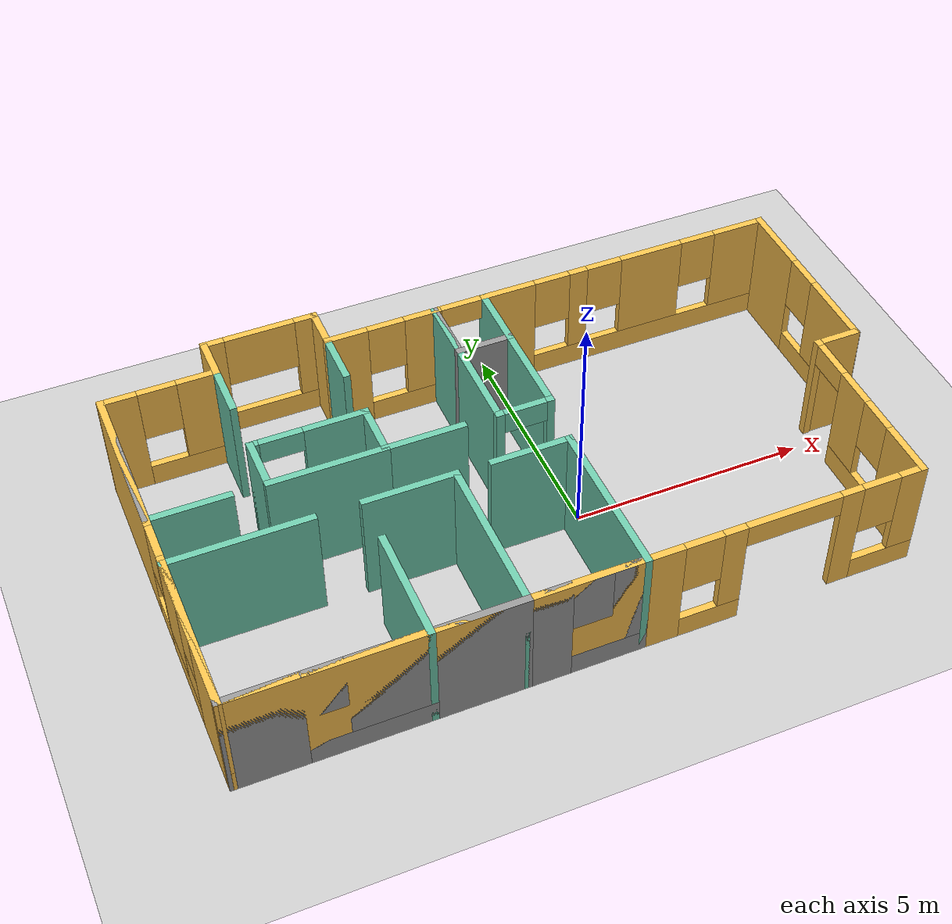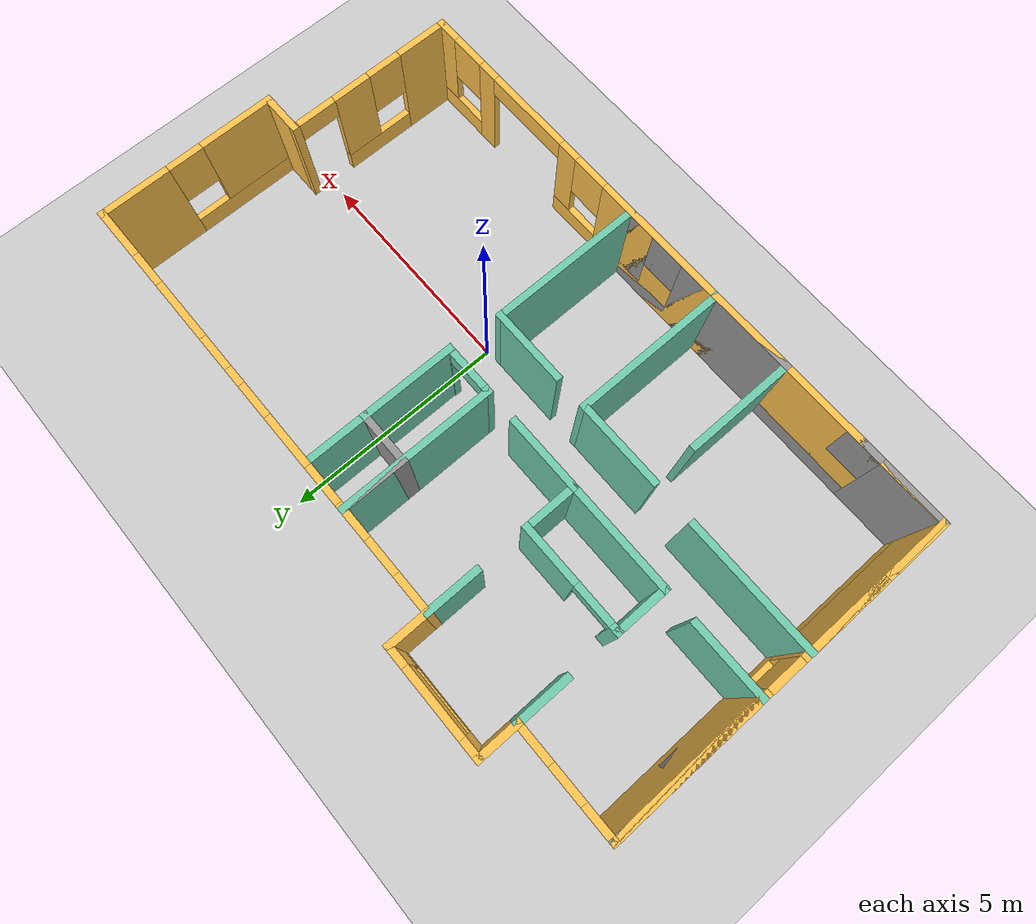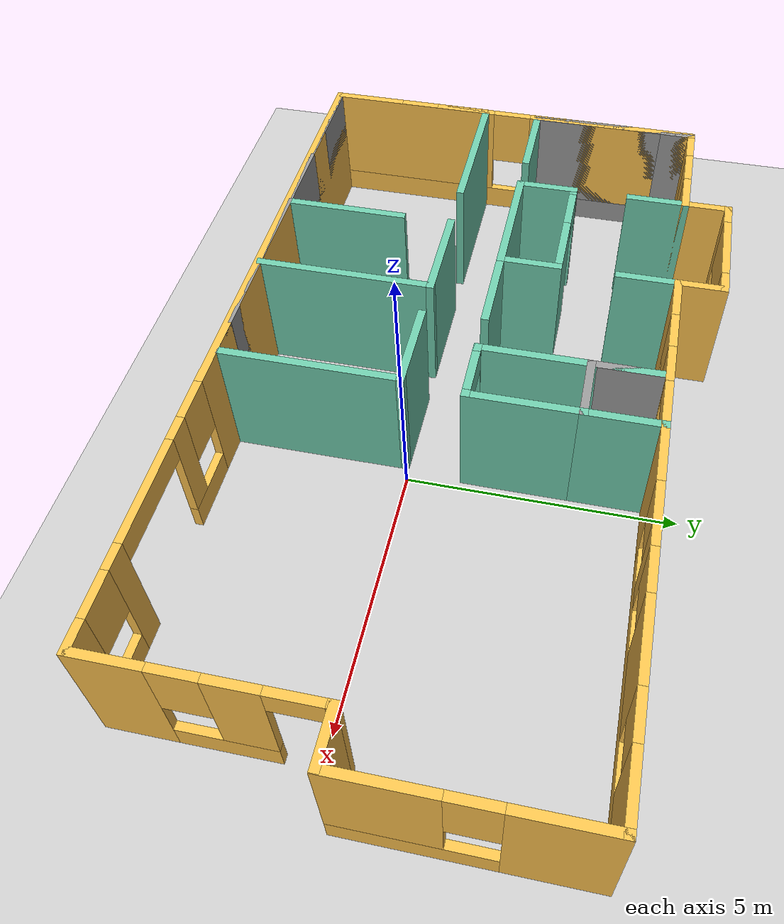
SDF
<sdf version="1.7">
 <world name="default">
  <model name="ground_plane">
   <static>1</static>
   <link name="link">
    <collision name="collision">
     <geometry><plane><normal>0 0 1</normal><size>100 100</size></plane></geometry>
     <surface><friction><ode><mu>100</mu><mu2>50</mu2></ode></friction></surface>
    </collision>
    <visual name="visual">
     <cast_shadows>0</cast_shadows>
     <geometry><plane><normal>0 0 1</normal><size>100 100</size></plane></geometry>
     <material>
      <script><uri>file://media/materials/scripts/gazebo.material</uri><name>Gazebo/Grey</name></script>
     </material>
    </visual>
   </link>
  </model>
  <model name="house">
   <pose>-1.00559 0.90173 0 0 -0 0</pose>
   <link name="Wall_0">
    <pose>-6.16995 3.50005 0 0 -0 0</pose>
    <visual name="Wall_0_Visual_0">
     <pose>-0.852569 0 1.25 0 -0 0</pose>
     <geometry><box><size>0.794862 0.15 2.5</size></box></geometry>
     <material>
      <script><uri>file://media/materials/scripts/gazebo.material</uri><name>Gazebo/Grey</name></script>
      <ambient>1 0.764706 0.305882 1</ambient>
     </material>
     <meta><layer>0</layer></meta>
    </visual>
    <collision name="Wall_0_Collision_0">
     <geometry><box><size>0.794862 0.15 2.5</size></box></geometry>
     <pose>-0.852569 0 1.25 0 -0 0</pose>
    </collision>
    <visual name="Wall_0_Visual_1">
     <pose>0.397431 0 0.25 0 -0 0</pose>
     <geometry><box><size>1.70514 0.15 0.5</size></box></geometry>
     <material>
      <script><uri>file://media/materials/scripts/gazebo.material</uri><name>Gazebo/Grey</name></script>
      <ambient>1 0.764706 0.305882 1</ambient>
     </material>
     <meta><layer>0</layer></meta>
    </visual>
    <collision name="Wall_0_Collision_1">
     <geometry><box><size>1.70514 0.15 0.5</size></box></geometry>
     <pose>0.397431 0 0.25 0 -0 0</pose>
    </collision>
    <visual name="Wall_0_Visual_2">
     <pose>0.797431 0 1.5 0 -0 0</pose>
     <geometry><box><size>0.905138 0.15 2</size></box></geometry>
     <material>
      <script><uri>file://media/materials/scripts/gazebo.material</uri><name>Gazebo/Grey</name></script>
      <ambient>1 0.764706 0.305882 1</ambient>
     </material>
     <meta><layer>0</layer></meta>
    </visual>
    <collision name="Wall_0_Collision_2">
     <geometry><box><size>0.905138 0.15 2</size></box></geometry>
     <pose>0.797431 0 1.5 0 -0 0</pose>
    </collision>
    <visual name="Wall_0_Visual_3">
     <pose>-0.055138 0 1.9 0 -0 0</pose>
     <geometry><box><size>0.8 0.15 1.2</size></box></geometry>
     <material>
      <script><uri>file://media/materials/scripts/gazebo.material</uri><name>Gazebo/Grey</name></script>
      <ambient>1 0.764706 0.305882 1</ambient>
     </material>
     <meta><layer>0</layer></meta>
    </visual>
    <collision name="Wall_0_Collision_3">
     <geometry><box><size>0.8 0.15 1.2</size></box></geometry>
     <pose>-0.055138 0 1.9 0 -0 0</pose>
    </collision>
   </link>
   <link name="Wall_1">
    <collision name="Wall_1_Collision">
     <geometry><box><size>1 0.15 2.5</size></box></geometry>
     <pose>0 0 1.25 0 -0 0</pose>
    </collision>
    <visual name="Wall_1_Visual">
     <pose>0 0 1.25 0 -0 0</pose>
     <geometry><box><size>1 0.15 2.5</size></box></geometry>
     <material>
      <script><uri>file://media/materials/scripts/gazebo.material</uri><name>Gazebo/Grey</name></script>
      <ambient>1 0.764706 0.305882 1</ambient>
     </material>
     <meta><layer>0</layer></meta>
    </visual>
    <pose>-4.99495 3.92505 0 0 -0 1.5708</pose>
   </link>
   <link name="Wall_10">
    <pose>6.49505 -2.42495 0 0 -0 1.5708</pose>
    <visual name="Wall_10_Visual_0">
     <pose>-1.37895 0 1.25 0 -0 0</pose>
     <geometry><box><size>1.24209 0.15 2.5</size></box></geometry>
     <material>
      <script><uri>file://media/materials/scripts/gazebo.material</uri><name>Gazebo/Grey</name></script>
      <ambient>1 0.764706 0.305882 1</ambient>
     </material>
     <meta><layer>0</layer></meta>
    </visual>
    <collision name="Wall_10_Collision_0">
     <geometry><box><size>1.24209 0.15 2.5</size></box></geometry>
     <pose>-1.37895 0 1.25 0 -0 0</pose>
    </collision>
    <visual name="Wall_10_Visual_1">
     <pose>1.91295 0 1.25 0 -0 0</pose>
     <geometry><box><size>0.174109 0.15 2.5</size></box></geometry>
     <material>
      <script><uri>file://media/materials/scripts/gazebo.material</uri><name>Gazebo/Grey</name></script>
      <ambient>1 0.764706 0.305882 1</ambient>
     </material>
     <meta><layer>0</layer></meta>
    </visual>
    <collision name="Wall_10_Collision_1">
     <geometry><box><size>0.174109 0.15 2.5</size></box></geometry>
     <pose>1.91295 0 1.25 0 -0 0</pose>
    </collision>
    <visual name="Wall_10_Visual_2">
     <pose>0.083992 0 0.25 0 -0 0</pose>
     <geometry><box><size>1.6838 0.15 0.5</size></box></geometry>
     <material>
      <script><uri>file://media/materials/scripts/gazebo.material</uri><name>Gazebo/Grey</name></script>
      <ambient>1 0.764706 0.305882 1</ambient>
     </material>
     <meta><layer>0</layer></meta>
    </visual>
    <collision name="Wall_10_Collision_2">
     <geometry><box><size>1.6838 0.15 0.5</size></box></geometry>
     <pose>0.083992 0 0.25 0 -0 0</pose>
    </collision>
    <visual name="Wall_10_Visual_3">
     <pose>0.483992 0 1.5 0 -0 0</pose>
     <geometry><box><size>0.883798 0.15 2</size></box></geometry>
     <material>
      <script><uri>file://media/materials/scripts/gazebo.material</uri><name>Gazebo/Grey</name></script>
      <ambient>1 0.764706 0.305882 1</ambient>
     </material>
     <meta><layer>0</layer></meta>
    </visual>
    <collision name="Wall_10_Collision_3">
     <geometry><box><size>0.883798 0.15 2</size></box></geometry>
     <pose>0.483992 0 1.5 0 -0 0</pose>
    </collision>
    <visual name="Wall_10_Visual_4">
     <pose>-0.357906 0 1.9 0 -0 0</pose>
     <geometry><box><size>0.8 0.15 1.2</size></box></geometry>
     <material>
      <script><uri>file://media/materials/scripts/gazebo.material</uri><name>Gazebo/Grey</name></script>
      <ambient>1 0.764706 0.305882 1</ambient>
     </material>
     <meta><layer>0</layer></meta>
    </visual>
    <collision name="Wall_10_Collision_4">
     <geometry><box><size>0.8 0.15 1.2</size></box></geometry>
     <pose>-0.357906 0 1.9 0 -0 0</pose>
    </collision>
    <visual name="Wall_10_Visual_5">
     <pose>1.37589 0 2.25 0 -0 0</pose>
     <geometry><box><size>0.9 0.15 0.5</size></box></geometry>
     <material>
      <script><uri>file://media/materials/scripts/gazebo.material</uri><name>Gazebo/Grey</name></script>
      <ambient>1 0.764706 0.305882 1</ambient>
     </material>
     <meta><layer>0</layer></meta>
    </visual>
    <collision name="Wall_10_Collision_5">
     <geometry><box><size>0.9 0.15 0.5</size></box></geometry>
     <pose>1.37589 0 2.25 0 -0 0</pose>
    </collision>
   </link>
   <link name="Wall_12">
    <collision name="Wall_12_Collision">
     <geometry><box><size>1 0.15 2.5</size></box></geometry>
     <pose>0 0 1.25 0 -0 0</pose>
    </collision>
    <visual name="Wall_12_Visual">
     <pose>0 0 1.25 0 -0 0</pose>
     <geometry><box><size>1 0.15 2.5</size></box></geometry>
     <material>
      <script><uri>file://media/materials/scripts/gazebo.material</uri><name>Gazebo/Grey</name></script>
      <ambient>1 0.764706 0.305882 1</ambient>
     </material>
     <meta><layer>0</layer></meta>
    </visual>
    <pose>6.92005 -0.499954 0 0 -0 0</pose>
   </link>
   <link name="Wall_15">
    <pose>7.35505 1.50005 0 0 0 -1.5708</pose>
    <visual name="Wall_15_Visual_0">
     <pose>-1.2709 0 1.25 0 -0 0</pose>
     <geometry><box><size>1.6082 0.15 2.5</size></box></geometry>
     <material>
      <script><uri>file://media/materials/scripts/gazebo.material</uri><name>Gazebo/Grey</name></script>
      <ambient>1 0.764706 0.305882 1</ambient>
     </material>
     <meta><layer>0</layer></meta>
    </visual>
    <collision name="Wall_15_Collision_0">
     <geometry><box><size>1.6082 0.15 2.5</size></box></geometry>
     <pose>-1.2709 0 1.25 0 -0 0</pose>
    </collision>
    <visual name="Wall_15_Visual_1">
     <pose>0.804102 0 0.25 0 -0 0</pose>
     <geometry><box><size>2.5418 0.15 0.5</size></box></geometry>
     <material>
      <script><uri>file://media/materials/scripts/gazebo.material</uri><name>Gazebo/Grey</name></script>
      <ambient>1 0.764706 0.305882 1</ambient>
     </material>
     <meta><layer>0</layer></meta>
    </visual>
    <collision name="Wall_15_Collision_1">
     <geometry><box><size>2.5418 0.15 0.5</size></box></geometry>
     <pose>0.804102 0 0.25 0 -0 0</pose>
    </collision>
    <visual name="Wall_15_Visual_2">
     <pose>1.2041 0 1.5 0 -0 0</pose>
     <geometry><box><size>1.7418 0.15 2</size></box></geometry>
     <material>
      <script><uri>file://media/materials/scripts/gazebo.material</uri><name>Gazebo/Grey</name></script>
      <ambient>1 0.764706 0.305882 1</ambient>
     </material>
     <meta><layer>0</layer></meta>
    </visual>
    <collision name="Wall_15_Collision_2">
     <geometry><box><size>1.7418 0.15 2</size></box></geometry>
     <pose>1.2041 0 1.5 0 -0 0</pose>
    </collision>
    <visual name="Wall_15_Visual_3">
     <pose>-0.066796 0 1.9 0 -0 0</pose>
     <geometry><box><size>0.8 0.15 1.2</size></box></geometry>
     <material>
      <script><uri>file://media/materials/scripts/gazebo.material</uri><name>Gazebo/Grey</name></script>
      <ambient>1 0.764706 0.305882 1</ambient>
     </material>
     <meta><layer>0</layer></meta>
    </visual>
    <collision name="Wall_15_Collision_3">
     <geometry><box><size>0.8 0.15 1.2</size></box></geometry>
     <pose>-0.066796 0 1.9 0 -0 0</pose>
    </collision>
   </link>
   <link name="Wall_2">
    <pose>-3.81995 4.35005 0 0 -0 0</pose>
    <visual name="Wall_2_Visual_0">
     <pose>-1.0075 0 1.25 0 -0 0</pose>
     <geometry><box><size>0.485 0.15 2.5</size></box></geometry>
     <material>
      <script><uri>file://media/materials/scripts/gazebo.material</uri><name>Gazebo/Grey</name></script>
      <ambient>1 0.764706 0.305882 1</ambient>
     </material>
     <meta><layer>0</layer></meta>
    </visual>
    <collision name="Wall_2_Collision_0">
     <geometry><box><size>0.485 0.15 2.5</size></box></geometry>
     <pose>-1.0075 0 1.25 0 -0 0</pose>
    </collision>
    <visual name="Wall_2_Visual_1">
     <pose>0.2425 0 0.25 0 -0 0</pose>
     <geometry><box><size>2.015 0.15 0.5</size></box></geometry>
     <material>
      <script><uri>file://media/materials/scripts/gazebo.material</uri><name>Gazebo/Grey</name></script>
      <ambient>1 0.764706 0.305882 1</ambient>
     </material>
     <meta><layer>0</layer></meta>
    </visual>
    <collision name="Wall_2_Collision_1">
     <geometry><box><size>2.015 0.15 0.5</size></box></geometry>
     <pose>0.2425 0 0.25 0 -0 0</pose>
    </collision>
    <visual name="Wall_2_Visual_2">
     <pose>0.9925 0 1.5 0 -0 0</pose>
     <geometry><box><size>0.515 0.15 2</size></box></geometry>
     <material>
      <script><uri>file://media/materials/scripts/gazebo.material</uri><name>Gazebo/Grey</name></script>
      <ambient>1 0.764706 0.305882 1</ambient>
     </material>
     <meta><layer>0</layer></meta>
    </visual>
    <collision name="Wall_2_Collision_2">
     <geometry><box><size>0.515 0.15 2</size></box></geometry>
     <pose>0.9925 0 1.5 0 -0 0</pose>
    </collision>
    <visual name="Wall_2_Visual_3">
     <pose>-0.015 0 1.9 0 -0 0</pose>
     <geometry><box><size>1.5 0.15 1.2</size></box></geometry>
     <material>
      <script><uri>file://media/materials/scripts/gazebo.material</uri><name>Gazebo/Grey</name></script>
      <ambient>1 0.764706 0.305882 1</ambient>
     </material>
     <meta><layer>0</layer></meta>
    </visual>
    <collision name="Wall_2_Collision_3">
     <geometry><box><size>1.5 0.15 1.2</size></box></geometry>
     <pose>-0.015 0 1.9 0 -0 0</pose>
    </collision>
   </link>
   <link name="Wall_22">
    <collision name="Wall_22_Collision">
     <geometry><box><size>1.25 0.15 2.5</size></box></geometry>
     <pose>0 0 1.25 0 -0 0</pose>
    </collision>
    <visual name="Wall_22_Visual">
     <pose>0 0 1.25 0 -0 0</pose>
     <geometry><box><size>1.25 0.15 2.5</size></box></geometry>
     <material>
      <script><uri>file://media/materials/scripts/gazebo.material</uri><name>Gazebo/Grey</name></script>
      <ambient>0.435294 0.796078 0.67451 1</ambient>
     </material>
     <meta><layer>0</layer></meta>
    </visual>
    <pose>-4.99495 2.95005 0 0 0 -1.5708</pose>
   </link>
   <link name="Wall_24">
    <pose>-7.34495 1.84025 0 0 0 -1.5708</pose>
    <visual name="Wall_24_Visual_0">
     <pose>-1.36898 0 1.25 0 -0 0</pose>
     <geometry><box><size>0.731623 0.15 2.5</size></box></geometry>
     <material>
      <script><uri>file://media/materials/scripts/gazebo.material</uri><name>Gazebo/Grey</name></script>
      <ambient>1 1 1 1</ambient>
     </material>
     <meta><layer>0</layer></meta>
    </visual>
    <collision name="Wall_24_Collision_0">
     <geometry><box><size>0.731623 0.15 2.5</size></box></geometry>
     <pose>-1.36898 0 1.25 0 -0 0</pose>
    </collision>
    <visual name="Wall_24_Visual_1">
     <pose>0.365812 0 0.25 0 -0 0</pose>
     <geometry><box><size>2.73796 0.15 0.5</size></box></geometry>
     <material>
      <script><uri>file://media/materials/scripts/gazebo.material</uri><name>Gazebo/Grey</name></script>
      <ambient>1 1 1 1</ambient>
     </material>
     <meta><layer>0</layer></meta>
    </visual>
    <collision name="Wall_24_Collision_1">
     <geometry><box><size>2.73796 0.15 0.5</size></box></geometry>
     <pose>0.365812 0 0.25 0 -0 0</pose>
    </collision>
    <visual name="Wall_24_Visual_2">
     <pose>0.765812 0 1.5 0 -0 0</pose>
     <geometry><box><size>1.93796 0.15 2</size></box></geometry>
     <material>
      <script><uri>file://media/materials/scripts/gazebo.material</uri><name>Gazebo/Grey</name></script>
      <ambient>1 1 1 1</ambient>
     </material>
     <meta><layer>0</layer></meta>
    </visual>
    <collision name="Wall_24_Collision_2">
     <geometry><box><size>1.93796 0.15 2</size></box></geometry>
     <pose>0.765812 0 1.5 0 -0 0</pose>
    </collision>
    <visual name="Wall_24_Visual_3">
     <pose>-0.603168 0 1.9 0 -0 0</pose>
     <geometry><box><size>0.8 0.15 1.2</size></box></geometry>
     <material>
      <script><uri>file://media/materials/scripts/gazebo.material</uri><name>Gazebo/Grey</name></script>
      <ambient>1 1 1 1</ambient>
     </material>
     <meta><layer>0</layer></meta>
    </visual>
    <collision name="Wall_24_Collision_3">
     <geometry><box><size>0.8 0.15 1.2</size></box></geometry>
     <pose>-0.603168 0 1.9 0 -0 0</pose>
    </collision>
   </link>
   <link name="Wall_26">
    <collision name="Wall_26_Collision">
     <geometry><box><size>1.21958 0.15 2.5</size></box></geometry>
     <pose>0 0 1.25 0 -0 0</pose>
    </collision>
    <visual name="Wall_26_Visual">
     <pose>0 0 1.25 0 -0 0</pose>
     <geometry><box><size>1.21958 0.15 2.5</size></box></geometry>
     <material>
      <script><uri>file://media/materials/scripts/gazebo.material</uri><name>Gazebo/Grey</name></script>
      <ambient>0.435294 0.796078 0.67451 1</ambient>
     </material>
     <meta><layer>0</layer></meta>
    </visual>
    <pose>-4.99495 0.715255 0 0 -0 1.5708</pose>
   </link>
   <link name="Wall_29">
    <collision name="Wall_29_Collision">
     <geometry><box><size>1.25 0.15 2.5</size></box></geometry>
     <pose>0 0 1.25 0 -0 0</pose>
    </collision>
    <visual name="Wall_29_Visual">
     <pose>0 0 1.25 0 -0 0</pose>
     <geometry><box><size>1.25 0.15 2.5</size></box></geometry>
     <material>
      <script><uri>file://media/materials/scripts/gazebo.material</uri><name>Gazebo/Grey</name></script>
      <ambient>0.435294 0.796078 0.67451 1</ambient>
     </material>
     <meta><layer>0</layer></meta>
    </visual>
    <pose>-2.64495 0.700047 0 0 -0 1.5708</pose>
   </link>
   <link name="Wall_3">
    <collision name="Wall_3_Collision">
     <geometry><box><size>1 0.15 2.5</size></box></geometry>
     <pose>0 0 1.25 0 -0 0</pose>
    </collision>
    <visual name="Wall_3_Visual">
     <pose>0 0 1.25 0 -0 0</pose>
     <geometry><box><size>1 0.15 2.5</size></box></geometry>
     <material>
      <script><uri>file://media/materials/scripts/gazebo.material</uri><name>Gazebo/Grey</name></script>
      <ambient>1 0.764706 0.305882 1</ambient>
     </material>
     <meta><layer>0</layer></meta>
    </visual>
    <pose>-2.64495 3.92505 0 0 0 -1.5708</pose>
   </link>
   <link name="Wall_31">
    <collision name="Wall_31_Collision">
     <geometry><box><size>1.25 0.15 2.5</size></box></geometry>
     <pose>0 0 1.25 0 -0 0</pose>
    </collision>
    <visual name="Wall_31_Visual">
     <pose>0 0 1.25 0 -0 0</pose>
     <geometry><box><size>1.25 0.15 2.5</size></box></geometry>
     <material>
      <script><uri>file://media/materials/scripts/gazebo.material</uri><name>Gazebo/Grey</name></script>
      <ambient>0.435294 0.796078 0.67451 1</ambient>
     </material>
     <meta><layer>0</layer></meta>
    </visual>
    <pose>-2.64495 2.95005 0 0 0 -1.5708</pose>
   </link>
   <link name="Wall_34">
    <pose>-3.81995 1.25005 0 0 -0 0</pose>
    <visual name="Wall_34_Visual_0">
     <pose>-1.13392 0 1.25 0 -0 0</pose>
     <geometry><box><size>0.232165 0.15 2.5</size></box></geometry>
     <material>
      <script><uri>file://media/materials/scripts/gazebo.material</uri><name>Gazebo/Grey</name></script>
      <ambient>0.435294 0.796078 0.67451 1</ambient>
     </material>
     <meta><layer>0</layer></meta>
    </visual>
    <collision name="Wall_34_Collision_0">
     <geometry><box><size>0.232165 0.15 2.5</size></box></geometry>
     <pose>-1.13392 0 1.25 0 -0 0</pose>
    </collision>
    <visual name="Wall_34_Visual_1">
     <pose>0.566082 0 1.25 0 -0 0</pose>
     <geometry><box><size>1.36783 0.15 2.5</size></box></geometry>
     <material>
      <script><uri>file://media/materials/scripts/gazebo.material</uri><name>Gazebo/Grey</name></script>
      <ambient>0.435294 0.796078 0.67451 1</ambient>
     </material>
     <meta><layer>0</layer></meta>
    </visual>
    <collision name="Wall_34_Collision_1">
     <geometry><box><size>1.36783 0.15 2.5</size></box></geometry>
     <pose>0.566082 0 1.25 0 -0 0</pose>
    </collision>
    <visual name="Wall_34_Visual_2">
     <pose>-0.567835 0 2.25 0 -0 0</pose>
     <geometry><box><size>0.9 0.15 0.5</size></box></geometry>
     <material>
      <script><uri>file://media/materials/scripts/gazebo.material</uri><name>Gazebo/Grey</name></script>
      <ambient>0.435294 0.796078 0.67451 1</ambient>
     </material>
     <meta><layer>0</layer></meta>
    </visual>
    <collision name="Wall_34_Collision_2">
     <geometry><box><size>0.9 0.15 0.5</size></box></geometry>
     <pose>-0.567835 0 2.25 0 -0 0</pose>
    </collision>
   </link>
   <link name="Wall_37">
    <collision name="Wall_37_Collision">
     <geometry><box><size>3.5 0.15 2.5</size></box></geometry>
     <pose>0 0 1.25 0 -0 0</pose>
    </collision>
    <visual name="Wall_37_Visual">
     <pose>0 0 1.25 0 -0 0</pose>
     <geometry><box><size>3.5 0.15 2.5</size></box></geometry>
     <material>
      <script><uri>file://media/materials/scripts/gazebo.material</uri><name>Gazebo/Grey</name></script>
      <ambient>0.435294 0.796078 0.67451 1</ambient>
     </material>
     <meta><layer>0</layer></meta>
    </visual>
    <pose>-0.294953 1.82505 0 0 -0 1.5708</pose>
   </link>
   <link name="Wall_39">
    <collision name="Wall_39_Collision">
     <geometry><box><size>1.5 0.15 2.5</size></box></geometry>
     <pose>0 0 1.25 0 -0 0</pose>
    </collision>
    <visual name="Wall_39_Visual">
     <pose>0 0 1.25 0 -0 0</pose>
     <geometry><box><size>1.5 0.15 2.5</size></box></geometry>
     <material>
      <script><uri>file://media/materials/scripts/gazebo.material</uri><name>Gazebo/Grey</name></script>
      <ambient>1 1 1 1</ambient>
     </material>
     <meta><layer>0</layer></meta>
    </visual>
    <pose>-0.294953 2.82505 0 0 0 -1.5708</pose>
   </link>
   <link name="Wall_4">
    <pose>2.35505 3.50005 0 0 -0 0</pose>
    <visual name="Wall_4_Visual_0">
     <pose>-4.60938 0 1.25 0 -0 0</pose>
     <geometry><box><size>0.931245 0.15 2.5</size></box></geometry>
     <material>
      <script><uri>file://media/materials/scripts/gazebo.material</uri><name>Gazebo/Grey</name></script>
      <ambient>1 0.764706 0.305882 1</ambient>
     </material>
     <meta><layer>0</layer></meta>
    </visual>
    <collision name="Wall_4_Collision_0">
     <geometry><box><size>0.931245 0.15 2.5</size></box></geometry>
     <pose>-4.60938 0 1.25 0 -0 0</pose>
    </collision>
    <visual name="Wall_4_Visual_1">
     <pose>-1.0127 0 1.25 0 -0 0</pose>
     <geometry><box><size>1.22059 0.15 2.5</size></box></geometry>
     <material>
      <script><uri>file://media/materials/scripts/gazebo.material</uri><name>Gazebo/Grey</name></script>
      <ambient>1 0.764706 0.305882 1</ambient>
     </material>
     <meta><layer>0</layer></meta>
    </visual>
    <collision name="Wall_4_Collision_1">
     <geometry><box><size>1.22059 0.15 2.5</size></box></geometry>
     <pose>-1.0127 0 1.25 0 -0 0</pose>
    </collision>
    <visual name="Wall_4_Visual_2">
     <pose>-3.33337 0 0.25 0 -0 0</pose>
     <geometry><box><size>1.62077 0.15 0.5</size></box></geometry>
     <material>
      <script><uri>file://media/materials/scripts/gazebo.material</uri><name>Gazebo/Grey</name></script>
      <ambient>1 0.764706 0.305882 1</ambient>
     </material>
     <meta><layer>0</layer></meta>
    </visual>
    <collision name="Wall_4_Collision_2">
     <geometry><box><size>1.62077 0.15 0.5</size></box></geometry>
     <pose>-3.33337 0 0.25 0 -0 0</pose>
    </collision>
    <visual name="Wall_4_Visual_3">
     <pose>2.3363 0 0.25 0 -0 0</pose>
     <geometry><box><size>5.4774 0.15 0.5</size></box></geometry>
     <material>
      <script><uri>file://media/materials/scripts/gazebo.material</uri><name>Gazebo/Grey</name></script>
      <ambient>1 0.764706 0.305882 1</ambient>
     </material>
     <meta><layer>0</layer></meta>
    </visual>
    <collision name="Wall_4_Collision_3">
     <geometry><box><size>5.4774 0.15 0.5</size></box></geometry>
     <pose>2.3363 0 0.25 0 -0 0</pose>
    </collision>
    <visual name="Wall_4_Visual_4">
     <pose>-2.93337 0 1.5 0 -0 0</pose>
     <geometry><box><size>0.820767 0.15 2</size></box></geometry>
     <material>
      <script><uri>file://media/materials/scripts/gazebo.material</uri><name>Gazebo/Grey</name></script>
      <ambient>1 0.764706 0.305882 1</ambient>
     </material>
     <meta><layer>0</layer></meta>
    </visual>
    <collision name="Wall_4_Collision_4">
     <geometry><box><size>0.820767 0.15 2</size></box></geometry>
     <pose>-2.93337 0 1.5 0 -0 0</pose>
    </collision>
    <visual name="Wall_4_Visual_5">
     <pose>-2.93337 0 1.5 0 -0 0</pose>
     <geometry><box><size>0.820767 0.15 2</size></box></geometry>
     <material>
      <script><uri>file://media/materials/scripts/gazebo.material</uri><name>Gazebo/Grey</name></script>
      <ambient>1 0.764706 0.305882 1</ambient>
     </material>
     <meta><layer>0</layer></meta>
    </visual>
    <collision name="Wall_4_Collision_5">
     <geometry><box><size>0.820767 0.15 2</size></box></geometry>
     <pose>-2.93337 0 1.5 0 -0 0</pose>
    </collision>
    <visual name="Wall_4_Visual_6">
     <pose>0.605947 0 1.5 0 -0 0</pose>
     <geometry><box><size>0.4167 0.15 2</size></box></geometry>
     <material>
      <script><uri>file://media/materials/scripts/gazebo.material</uri><name>Gazebo/Grey</name></script>
      <ambient>1 0.764706 0.305882 1</ambient>
     </material>
     <meta><layer>0</layer></meta>
    </visual>
    <collision name="Wall_4_Collision_6">
     <geometry><box><size>0.4167 0.15 2</size></box></geometry>
     <pose>0.605947 0 1.5 0 -0 0</pose>
    </collision>
    <visual name="Wall_4_Visual_7">
     <pose>2.33214 0 1.5 0 -0 0</pose>
     <geometry><box><size>1.43569 0.15 2</size></box></geometry>
     <material>
      <script><uri>file://media/materials/scripts/gazebo.material</uri><name>Gazebo/Grey</name></script>
      <ambient>1 0.764706 0.305882 1</ambient>
     </material>
     <meta><layer>0</layer></meta>
    </visual>
    <collision name="Wall_4_Collision_7">
     <geometry><box><size>1.43569 0.15 2</size></box></geometry>
     <pose>2.33214 0 1.5 0 -0 0</pose>
    </collision>
    <visual name="Wall_4_Visual_8">
     <pose>4.46249 0 1.5 0 -0 0</pose>
     <geometry><box><size>1.22502 0.15 2</size></box></geometry>
     <material>
      <script><uri>file://media/materials/scripts/gazebo.material</uri><name>Gazebo/Grey</name></script>
      <ambient>1 0.764706 0.305882 1</ambient>
     </material>
     <meta><layer>0</layer></meta>
    </visual>
    <collision name="Wall_4_Collision_8">
     <geometry><box><size>1.22502 0.15 2</size></box></geometry>
     <pose>4.46249 0 1.5 0 -0 0</pose>
    </collision>
    <visual name="Wall_4_Visual_9">
     <pose>-3.74376 0 1.9 0 -0 0</pose>
     <geometry><box><size>0.8 0.15 1.2</size></box></geometry>
     <material>
      <script><uri>file://media/materials/scripts/gazebo.material</uri><name>Gazebo/Grey</name></script>
      <ambient>1 0.764706 0.305882 1</ambient>
     </material>
     <meta><layer>0</layer></meta>
    </visual>
    <collision name="Wall_4_Collision_9">
     <geometry><box><size>0.8 0.15 1.2</size></box></geometry>
     <pose>-3.74376 0 1.9 0 -0 0</pose>
    </collision>
    <visual name="Wall_4_Visual_10">
     <pose>-0.002403 0 1.9 0 -0 0</pose>
     <geometry><box><size>0.8 0.15 1.2</size></box></geometry>
     <material>
      <script><uri>file://media/materials/scripts/gazebo.material</uri><name>Gazebo/Grey</name></script>
      <ambient>1 0.764706 0.305882 1</ambient>
     </material>
     <meta><layer>0</layer></meta>
    </visual>
    <collision name="Wall_4_Collision_10">
     <geometry><box><size>0.8 0.15 1.2</size></box></geometry>
     <pose>-0.002403 0 1.9 0 -0 0</pose>
    </collision>
    <visual name="Wall_4_Visual_11">
     <pose>1.2143 0 1.9 0 -0 0</pose>
     <geometry><box><size>0.8 0.15 1.2</size></box></geometry>
     <material>
      <script><uri>file://media/materials/scripts/gazebo.material</uri><name>Gazebo/Grey</name></script>
      <ambient>1 0.764706 0.305882 1</ambient>
     </material>
     <meta><layer>0</layer></meta>
    </visual>
    <collision name="Wall_4_Collision_11">
     <geometry><box><size>0.8 0.15 1.2</size></box></geometry>
     <pose>1.2143 0 1.9 0 -0 0</pose>
    </collision>
    <visual name="Wall_4_Visual_12">
     <pose>3.44998 0 1.9 0 -0 0</pose>
     <geometry><box><size>0.8 0.15 1.2</size></box></geometry>
     <material>
      <script><uri>file://media/materials/scripts/gazebo.material</uri><name>Gazebo/Grey</name></script>
      <ambient>1 0.764706 0.305882 1</ambient>
     </material>
     <meta><layer>0</layer></meta>
    </visual>
    <collision name="Wall_4_Collision_12">
     <geometry><box><size>0.8 0.15 1.2</size></box></geometry>
     <pose>3.44998 0 1.9 0 -0 0</pose>
    </collision>
    <visual name="Wall_4_Visual_13">
     <pose>-2.07299 0 2.25 0 -0 0</pose>
     <geometry><box><size>0.9 0.15 0.5</size></box></geometry>
     <material>
      <script><uri>file://media/materials/scripts/gazebo.material</uri><name>Gazebo/Grey</name></script>
      <ambient>1 0.764706 0.305882 1</ambient>
     </material>
     <meta><layer>0</layer></meta>
    </visual>
    <collision name="Wall_4_Collision_13">
     <geometry><box><size>0.9 0.15 0.5</size></box></geometry>
     <pose>-2.07299 0 2.25 0 -0 0</pose>
    </collision>
    <visual name="Wall_4_Visual_14">
     <pose>-2.07299 0 2.25 0 -0 0</pose>
     <geometry><box><size>0.9 0.15 0.5</size></box></geometry>
     <material>
      <script><uri>file://media/materials/scripts/gazebo.material</uri><name>Gazebo/Grey</name></script>
      <ambient>1 0.764706 0.305882 1</ambient>
     </material>
     <meta><layer>0</layer></meta>
    </visual>
    <collision name="Wall_4_Collision_14">
     <geometry><box><size>0.9 0.15 0.5</size></box></geometry>
     <pose>-2.07299 0 2.25 0 -0 0</pose>
    </collision>
   </link>
   <link name="Wall_40">
    <collision name="Wall_40_Collision">
     <geometry><box><size>1.25 0.15 2.5</size></box></geometry>
     <pose>0 0 1.25 0 -0 0</pose>
    </collision>
    <visual name="Wall_40_Visual">
     <pose>0 0 1.25 0 -0 0</pose>
     <geometry><box><size>1.25 0.15 2.5</size></box></geometry>
     <material>
      <script><uri>file://media/materials/scripts/gazebo.material</uri><name>Gazebo/Grey</name></script>
      <ambient>1 1 1 1</ambient>
     </material>
     <meta><layer>0</layer></meta>
    </visual>
    <pose>0.255048 2.15005 0 0 -0 0</pose>
   </link>
   <link name="Wall_41">
    <collision name="Wall_41_Collision">
     <geometry><box><size>1.5 0.15 2.5</size></box></geometry>
     <pose>0 0 1.25 0 -0 0</pose>
    </collision>
    <visual name="Wall_41_Visual">
     <pose>0 0 1.25 0 -0 0</pose>
     <geometry><box><size>1.5 0.15 2.5</size></box></geometry>
     <material>
      <script><uri>file://media/materials/scripts/gazebo.material</uri><name>Gazebo/Grey</name></script>
      <ambient>0.435294 0.796078 0.67451 1</ambient>
     </material>
     <meta><layer>0</layer></meta>
    </visual>
    <pose>0.805048 2.82505 0 0 -0 1.5708</pose>
   </link>
   <link name="Wall_43">
    <pose>0.255048 0.150046 0 0 -0 0</pose>
    <visual name="Wall_43_Visual_0">
     <pose>-0.532739 0 1.25 0 -0 0</pose>
     <geometry><box><size>0.184521 0.15 2.5</size></box></geometry>
     <material>
      <script><uri>file://media/materials/scripts/gazebo.material</uri><name>Gazebo/Grey</name></script>
      <ambient>0.435294 0.796078 0.67451 1</ambient>
     </material>
     <meta><layer>0</layer></meta>
    </visual>
    <collision name="Wall_43_Collision_0">
     <geometry><box><size>0.184521 0.15 2.5</size></box></geometry>
     <pose>-0.532739 0 1.25 0 -0 0</pose>
    </collision>
    <visual name="Wall_43_Visual_1">
     <pose>0.542261 0 1.25 0 -0 0</pose>
     <geometry><box><size>0.165479 0.15 2.5</size></box></geometry>
     <material>
      <script><uri>file://media/materials/scripts/gazebo.material</uri><name>Gazebo/Grey</name></script>
      <ambient>0.435294 0.796078 0.67451 1</ambient>
     </material>
     <meta><layer>0</layer></meta>
    </visual>
    <collision name="Wall_43_Collision_1">
     <geometry><box><size>0.165479 0.15 2.5</size></box></geometry>
     <pose>0.542261 0 1.25 0 -0 0</pose>
    </collision>
    <visual name="Wall_43_Visual_2">
     <pose>0.009521 0 2.25 0 -0 0</pose>
     <geometry><box><size>0.9 0.15 0.5</size></box></geometry>
     <material>
      <script><uri>file://media/materials/scripts/gazebo.material</uri><name>Gazebo/Grey</name></script>
      <ambient>0.435294 0.796078 0.67451 1</ambient>
     </material>
     <meta><layer>0</layer></meta>
    </visual>
    <collision name="Wall_43_Collision_2">
     <geometry><box><size>0.9 0.15 0.5</size></box></geometry>
     <pose>0.009521 0 2.25 0 -0 0</pose>
    </collision>
   </link>
   <link name="Wall_44">
    <collision name="Wall_44_Collision">
     <geometry><box><size>2.15 0.15 2.5</size></box></geometry>
     <pose>0 0 1.25 0 -0 0</pose>
    </collision>
    <visual name="Wall_44_Visual">
     <pose>0 0 1.25 0 -0 0</pose>
     <geometry><box><size>2.15 0.15 2.5</size></box></geometry>
     <material>
      <script><uri>file://media/materials/scripts/gazebo.material</uri><name>Gazebo/Grey</name></script>
      <ambient>0.435294 0.796078 0.67451 1</ambient>
     </material>
     <meta><layer>0</layer></meta>
    </visual>
    <pose>0.805048 1.15005 0 0 -0 1.5708</pose>
   </link>
   <link name="Wall_46">
    <pose>-7.35495 -2.67495 0 0 -0 1.5708</pose>
    <visual name="Wall_46_Visual_0">
     <pose>-0.98447 0 1.25 0 -0 0</pose>
     <geometry><box><size>1.53106 0.15 2.5</size></box></geometry>
     <material>
      <script><uri>file://media/materials/scripts/gazebo.material</uri><name>Gazebo/Grey</name></script>
      <ambient>1 0.764706 0.305882 1</ambient>
     </material>
     <meta><layer>0</layer></meta>
    </visual>
    <collision name="Wall_46_Collision_0">
     <geometry><box><size>1.53106 0.15 2.5</size></box></geometry>
     <pose>-0.98447 0 1.25 0 -0 0</pose>
    </collision>
    <visual name="Wall_46_Visual_1">
     <pose>0.76553 0 0.25 0 -0 0</pose>
     <geometry><box><size>1.96894 0.15 0.5</size></box></geometry>
     <material>
      <script><uri>file://media/materials/scripts/gazebo.material</uri><name>Gazebo/Grey</name></script>
      <ambient>1 0.764706 0.305882 1</ambient>
     </material>
     <meta><layer>0</layer></meta>
    </visual>
    <collision name="Wall_46_Collision_1">
     <geometry><box><size>1.96894 0.15 0.5</size></box></geometry>
     <pose>0.76553 0 0.25 0 -0 0</pose>
    </collision>
    <visual name="Wall_46_Visual_2">
     <pose>1.16553 0 1.5 0 -0 0</pose>
     <geometry><box><size>1.16894 0.15 2</size></box></geometry>
     <material>
      <script><uri>file://media/materials/scripts/gazebo.material</uri><name>Gazebo/Grey</name></script>
      <ambient>1 0.764706 0.305882 1</ambient>
     </material>
     <meta><layer>0</layer></meta>
    </visual>
    <collision name="Wall_46_Collision_2">
     <geometry><box><size>1.16894 0.15 2</size></box></geometry>
     <pose>1.16553 0 1.5 0 -0 0</pose>
    </collision>
    <visual name="Wall_46_Visual_3">
     <pose>0.18106 0 1.9 0 -0 0</pose>
     <geometry><box><size>0.8 0.15 1.2</size></box></geometry>
     <material>
      <script><uri>file://media/materials/scripts/gazebo.material</uri><name>Gazebo/Grey</name></script>
      <ambient>1 0.764706 0.305882 1</ambient>
     </material>
     <meta><layer>0</layer></meta>
    </visual>
    <collision name="Wall_46_Collision_3">
     <geometry><box><size>0.8 0.15 1.2</size></box></geometry>
     <pose>0.18106 0 1.9 0 -0 0</pose>
    </collision>
   </link>
   <link name="Wall_47">
    <collision name="Wall_47_Collision">
     <geometry><box><size>3 0.15 2.5</size></box></geometry>
     <pose>0 0 1.25 0 -0 0</pose>
    </collision>
    <visual name="Wall_47_Visual">
     <pose>0 0 1.25 0 -0 0</pose>
     <geometry><box><size>3 0.15 2.5</size></box></geometry>
     <material>
      <script><uri>file://media/materials/scripts/gazebo.material</uri><name>Gazebo/Grey</name></script>
      <ambient>0.435294 0.796078 0.67451 1</ambient>
     </material>
     <meta><layer>0</layer></meta>
    </visual>
    <pose>-5.92995 -0.999954 0 0 -0 0</pose>
   </link>
   <link name="Wall_50">
    <pose>-5.42995 -4.34995 0 0 -0 0</pose>
    <visual name="Wall_50_Visual_0">
     <pose>-1.23256 0 1.25 0 -0 0</pose>
     <geometry><box><size>1.53488 0.15 2.5</size></box></geometry>
     <material>
      <script><uri>file://media/materials/scripts/gazebo.material</uri><name>Gazebo/Grey</name></script>
      <ambient>1 1 1 1</ambient>
     </material>
     <meta><layer>0</layer></meta>
    </visual>
    <collision name="Wall_50_Collision_0">
     <geometry><box><size>1.53488 0.15 2.5</size></box></geometry>
     <pose>-1.23256 0 1.25 0 -0 0</pose>
    </collision>
    <visual name="Wall_50_Visual_1">
     <pose>0.767441 0 0.25 0 -0 0</pose>
     <geometry><box><size>2.46512 0.15 0.5</size></box></geometry>
     <material>
      <script><uri>file://media/materials/scripts/gazebo.material</uri><name>Gazebo/Grey</name></script>
      <ambient>1 1 1 1</ambient>
     </material>
     <meta><layer>0</layer></meta>
    </visual>
    <collision name="Wall_50_Collision_1">
     <geometry><box><size>2.46512 0.15 0.5</size></box></geometry>
     <pose>0.767441 0 0.25 0 -0 0</pose>
    </collision>
    <visual name="Wall_50_Visual_2">
     <pose>1.16744 0 1.5 0 -0 0</pose>
     <geometry><box><size>1.66512 0.15 2</size></box></geometry>
     <material>
      <script><uri>file://media/materials/scripts/gazebo.material</uri><name>Gazebo/Grey</name></script>
      <ambient>1 1 1 1</ambient>
     </material>
     <meta><layer>0</layer></meta>
    </visual>
    <collision name="Wall_50_Collision_2">
     <geometry><box><size>1.66512 0.15 2</size></box></geometry>
     <pose>1.16744 0 1.5 0 -0 0</pose>
    </collision>
    <visual name="Wall_50_Visual_3">
     <pose>-0.065117 0 1.9 0 -0 0</pose>
     <geometry><box><size>0.8 0.15 1.2</size></box></geometry>
     <material>
      <script><uri>file://media/materials/scripts/gazebo.material</uri><name>Gazebo/Grey</name></script>
      <ambient>1 1 1 1</ambient>
     </material>
     <meta><layer>0</layer></meta>
    </visual>
    <collision name="Wall_50_Collision_3">
     <geometry><box><size>0.8 0.15 1.2</size></box></geometry>
     <pose>-0.065117 0 1.9 0 -0 0</pose>
    </collision>
   </link>
   <link name="Wall_53">
    <collision name="Wall_53_Collision">
     <geometry><box><size>2 0.15 2.5</size></box></geometry>
     <pose>0 0 1.25 0 -0 0</pose>
    </collision>
    <visual name="Wall_53_Visual">
     <pose>0 0 1.25 0 -0 0</pose>
     <geometry><box><size>2 0.15 2.5</size></box></geometry>
     <material>
      <script><uri>file://media/materials/scripts/gazebo.material</uri><name>Gazebo/Grey</name></script>
      <ambient>1 1 1 1</ambient>
     </material>
     <meta><layer>0</layer></meta>
    </visual>
    <pose>-2.57995 -4.34995 0 0 -0 0</pose>
   </link>
   <link name="Wall_54">
    <collision name="Wall_54_Collision">
     <geometry><box><size>3.5 0.15 2.5</size></box></geometry>
     <pose>0 0 1.25 0 -0 0</pose>
    </collision>
    <visual name="Wall_54_Visual">
     <pose>0 0 1.25 0 -0 0</pose>
     <geometry><box><size>3.5 0.15 2.5</size></box></geometry>
     <material>
      <script><uri>file://media/materials/scripts/gazebo.material</uri><name>Gazebo/Grey</name></script>
      <ambient>0.435294 0.796078 0.67451 1</ambient>
     </material>
     <meta><layer>0</layer></meta>
    </visual>
    <pose>-1.65495 -2.67495 0 0 -0 1.5708</pose>
   </link>
   <link name="Wall_56">
    <collision name="Wall_56_Collision">
     <geometry><box><size>2 0.15 2.5</size></box></geometry>
     <pose>0 0 1.25 0 -0 0</pose>
    </collision>
    <visual name="Wall_56_Visual">
     <pose>0 0 1.25 0 -0 0</pose>
     <geometry><box><size>2 0.15 2.5</size></box></geometry>
     <material>
      <script><uri>file://media/materials/scripts/gazebo.material</uri><name>Gazebo/Grey</name></script>
      <ambient>0.435294 0.796078 0.67451 1</ambient>
     </material>
     <meta><layer>0</layer></meta>
    </visual>
    <pose>-2.57995 -0.999954 0 0 -0 0</pose>
   </link>
   <link name="Wall_59">
    <collision name="Wall_59_Collision">
     <geometry><box><size>2.5 0.15 2.5</size></box></geometry>
     <pose>0 0 1.25 0 -0 0</pose>
    </collision>
    <visual name="Wall_59_Visual">
     <pose>0 0 1.25 0 -0 0</pose>
     <geometry><box><size>2.5 0.15 2.5</size></box></geometry>
     <material>
      <script><uri>file://media/materials/scripts/gazebo.material</uri><name>Gazebo/Grey</name></script>
      <ambient>0.435294 0.796078 0.67451 1</ambient>
     </material>
     <meta><layer>0</layer></meta>
    </visual>
    <pose>-3.50495 -3.17495 0 0 -0 1.5708</pose>
   </link>
   <link name="Wall_6">
    <pose>-7.34995 -0.424953 0 0 0 -1.57207</pose>
    <visual name="Wall_6_Visual_0">
     <pose>-2.20732 0 1.25 0 -0 0</pose>
     <geometry><box><size>3.58536 0.15 2.5</size></box></geometry>
     <material>
      <script><uri>file://media/materials/scripts/gazebo.material</uri><name>Gazebo/Grey</name></script>
      <ambient>1 0.764706 0.305882 1</ambient>
     </material>
     <meta><layer>0</layer></meta>
    </visual>
    <collision name="Wall_6_Collision_0">
     <geometry><box><size>3.58536 0.15 2.5</size></box></geometry>
     <pose>-2.20732 0 1.25 0 -0 0</pose>
    </collision>
    <visual name="Wall_6_Visual_1">
     <pose>1.79268 0 0.25 0 -0 0</pose>
     <geometry><box><size>4.41464 0.15 0.5</size></box></geometry>
     <material>
      <script><uri>file://media/materials/scripts/gazebo.material</uri><name>Gazebo/Grey</name></script>
      <ambient>1 0.764706 0.305882 1</ambient>
     </material>
     <meta><layer>0</layer></meta>
    </visual>
    <collision name="Wall_6_Collision_1">
     <geometry><box><size>4.41464 0.15 0.5</size></box></geometry>
     <pose>1.79268 0 0.25 0 -0 0</pose>
    </collision>
    <visual name="Wall_6_Visual_2">
     <pose>2.19268 0 1.5 0 -0 0</pose>
     <geometry><box><size>3.61464 0.15 2</size></box></geometry>
     <material>
      <script><uri>file://media/materials/scripts/gazebo.material</uri><name>Gazebo/Grey</name></script>
      <ambient>1 0.764706 0.305882 1</ambient>
     </material>
     <meta><layer>0</layer></meta>
    </visual>
    <collision name="Wall_6_Collision_2">
     <geometry><box><size>3.61464 0.15 2</size></box></geometry>
     <pose>2.19268 0 1.5 0 -0 0</pose>
    </collision>
    <visual name="Wall_6_Visual_3">
     <pose>-0.014638 0 1.9 0 -0 0</pose>
     <geometry><box><size>0.8 0.15 1.2</size></box></geometry>
     <material>
      <script><uri>file://media/materials/scripts/gazebo.material</uri><name>Gazebo/Grey</name></script>
      <ambient>1 0.764706 0.305882 1</ambient>
     </material>
     <meta><layer>0</layer></meta>
    </visual>
    <collision name="Wall_6_Collision_3">
     <geometry><box><size>0.8 0.15 1.2</size></box></geometry>
     <pose>-0.014638 0 1.9 0 -0 0</pose>
    </collision>
   </link>
   <link name="Wall_61">
    <pose>-0.479952 -4.34995 0 0 -0 0</pose>
    <visual name="Wall_61_Visual_0">
     <pose>-0.777489 0 1.25 0 -0 0</pose>
     <geometry><box><size>0.945023 0.15 2.5</size></box></geometry>
     <material>
      <script><uri>file://media/materials/scripts/gazebo.material</uri><name>Gazebo/Grey</name></script>
      <ambient>1 1 1 1</ambient>
     </material>
     <meta><layer>0</layer></meta>
    </visual>
    <collision name="Wall_61_Collision_0">
     <geometry><box><size>0.945023 0.15 2.5</size></box></geometry>
     <pose>-0.777489 0 1.25 0 -0 0</pose>
    </collision>
    <visual name="Wall_61_Visual_1">
     <pose>0.472511 0 0.25 0 -0 0</pose>
     <geometry><box><size>1.55498 0.15 0.5</size></box></geometry>
     <material>
      <script><uri>file://media/materials/scripts/gazebo.material</uri><name>Gazebo/Grey</name></script>
      <ambient>1 1 1 1</ambient>
     </material>
     <meta><layer>0</layer></meta>
    </visual>
    <collision name="Wall_61_Collision_1">
     <geometry><box><size>1.55498 0.15 0.5</size></box></geometry>
     <pose>0.472511 0 0.25 0 -0 0</pose>
    </collision>
    <visual name="Wall_61_Visual_2">
     <pose>0.872511 0 1.5 0 -0 0</pose>
     <geometry><box><size>0.754977 0.15 2</size></box></geometry>
     <material>
      <script><uri>file://media/materials/scripts/gazebo.material</uri><name>Gazebo/Grey</name></script>
      <ambient>1 1 1 1</ambient>
     </material>
     <meta><layer>0</layer></meta>
    </visual>
    <collision name="Wall_61_Collision_2">
     <geometry><box><size>0.754977 0.15 2</size></box></geometry>
     <pose>0.872511 0 1.5 0 -0 0</pose>
    </collision>
    <visual name="Wall_61_Visual_3">
     <pose>0.095023 0 1.9 0 -0 0</pose>
     <geometry><box><size>0.8 0.15 1.2</size></box></geometry>
     <material>
      <script><uri>file://media/materials/scripts/gazebo.material</uri><name>Gazebo/Grey</name></script>
      <ambient>1 1 1 1</ambient>
     </material>
     <meta><layer>0</layer></meta>
    </visual>
    <collision name="Wall_61_Collision_3">
     <geometry><box><size>0.8 0.15 1.2</size></box></geometry>
     <pose>0.095023 0 1.9 0 -0 0</pose>
    </collision>
   </link>
   <link name="Wall_62">
    <collision name="Wall_62_Collision">
     <geometry><box><size>3.5 0.15 2.5</size></box></geometry>
     <pose>0 0 1.25 0 -0 0</pose>
    </collision>
    <visual name="Wall_62_Visual">
     <pose>0 0 1.25 0 -0 0</pose>
     <geometry><box><size>3.5 0.15 2.5</size></box></geometry>
     <material>
      <script><uri>file://media/materials/scripts/gazebo.material</uri><name>Gazebo/Grey</name></script>
      <ambient>0.435294 0.796078 0.67451 1</ambient>
     </material>
     <meta><layer>0</layer></meta>
    </visual>
    <pose>0.695048 -2.67495 0 0 -0 1.5708</pose>
   </link>
   <link name="Wall_63">
    <collision name="Wall_63_Collision">
     <geometry><box><size>1.75 0.15 2.5</size></box></geometry>
     <pose>0 0 1.25 0 -0 0</pose>
    </collision>
    <visual name="Wall_63_Visual">
     <pose>0 0 1.25 0 -0 0</pose>
     <geometry><box><size>1.75 0.15 2.5</size></box></geometry>
     <material>
      <script><uri>file://media/materials/scripts/gazebo.material</uri><name>Gazebo/Grey</name></script>
      <ambient>0.435294 0.796078 0.67451 1</ambient>
     </material>
     <meta><layer>0</layer></meta>
    </visual>
    <pose>-0.104953 -0.999954 0 0 -0 3.14159</pose>
   </link>
   <link name="Wall_65">
    <collision name="Wall_65_Collision">
     <geometry><box><size>1.75 0.15 2.5</size></box></geometry>
     <pose>0 0 1.25 0 -0 0</pose>
    </collision>
    <visual name="Wall_65_Visual">
     <pose>0 0 1.25 0 -0 0</pose>
     <geometry><box><size>1.75 0.15 2.5</size></box></geometry>
     <material>
      <script><uri>file://media/materials/scripts/gazebo.material</uri><name>Gazebo/Grey</name></script>
      <ambient>0.435294 0.796078 0.67451 1</ambient>
     </material>
     <meta><layer>0</layer></meta>
    </visual>
    <pose>-1.84495 0.150046 0 0 -0 0</pose>
   </link>
   <link name="Wall_69">
    <collision name="Wall_69_Collision">
     <geometry><box><size>3.5 0.15 2.5</size></box></geometry>
     <pose>0 0 1.25 0 -0 0</pose>
    </collision>
    <visual name="Wall_69_Visual">
     <pose>0 0 1.25 0 -0 0</pose>
     <geometry><box><size>3.5 0.15 2.5</size></box></geometry>
     <material>
      <script><uri>file://media/materials/scripts/gazebo.material</uri><name>Gazebo/Grey</name></script>
      <ambient>1 0.764706 0.305882 1</ambient>
     </material>
     <meta><layer>0</layer></meta>
    </visual>
    <pose>-7.34495 1.82505 0 0 0 -1.5708</pose>
   </link>
   <link name="Wall_70">
    <collision name="Wall_70_Collision">
     <geometry><box><size>1.75 0.15 2.5</size></box></geometry>
     <pose>0 0 1.25 0 -0 0</pose>
    </collision>
    <visual name="Wall_70_Visual">
     <pose>0 0 1.25 0 -0 0</pose>
     <geometry><box><size>1.75 0.15 2.5</size></box></geometry>
     <material>
      <script><uri>file://media/materials/scripts/gazebo.material</uri><name>Gazebo/Grey</name></script>
      <ambient>0.435294 0.796078 0.67451 1</ambient>
     </material>
     <meta><layer>0</layer></meta>
    </visual>
    <pose>-6.54495 0.150046 0 0 -0 0</pose>
   </link>
   <link name="Wall_72">
    <collision name="Wall_72_Collision">
     <geometry><box><size>2.5 0.15 2.5</size></box></geometry>
     <pose>0 0 1.25 0 -0 0</pose>
    </collision>
    <visual name="Wall_72_Visual">
     <pose>0 0 1.25 0 -0 0</pose>
     <geometry><box><size>2.5 0.15 2.5</size></box></geometry>
     <material>
      <script><uri>file://media/materials/scripts/gazebo.material</uri><name>Gazebo/Grey</name></script>
      <ambient>0.435294 0.796078 0.67451 1</ambient>
     </material>
     <meta><layer>0</layer></meta>
    </visual>
    <pose>-3.81995 0.150046 0 0 -0 3.14159</pose>
   </link>
   <link name="Wall_8">
    <pose>-0.429953 -4.34995 0 0 -0 0</pose>
    <visual name="Wall_8_Visual_0">
     <pose>-2.55965 0 1.25 0 -0 0</pose>
     <geometry><box><size>8.88071 0.15 2.5</size></box></geometry>
     <material>
      <script><uri>file://media/materials/scripts/gazebo.material</uri><name>Gazebo/Grey</name></script>
      <ambient>1 0.764706 0.305882 1</ambient>
     </material>
     <meta><layer>0</layer></meta>
    </visual>
    <collision name="Wall_8_Collision_0">
     <geometry><box><size>8.88071 0.15 2.5</size></box></geometry>
     <pose>-2.55965 0 1.25 0 -0 0</pose>
    </collision>
    <visual name="Wall_8_Visual_1">
     <pose>5.38981 0 1.25 0 -0 0</pose>
     <geometry><box><size>0.464507 0.15 2.5</size></box></geometry>
     <material>
      <script><uri>file://media/materials/scripts/gazebo.material</uri><name>Gazebo/Grey</name></script>
      <ambient>1 0.764706 0.305882 1</ambient>
     </material>
     <meta><layer>0</layer></meta>
    </visual>
    <collision name="Wall_8_Collision_1">
     <geometry><box><size>0.464507 0.15 2.5</size></box></geometry>
     <pose>5.38981 0 1.25 0 -0 0</pose>
    </collision>
    <visual name="Wall_8_Visual_2">
     <pose>2.51913 0 0.25 0 -0 0</pose>
     <geometry><box><size>1.27685 0.15 0.5</size></box></geometry>
     <material>
      <script><uri>file://media/materials/scripts/gazebo.material</uri><name>Gazebo/Grey</name></script>
      <ambient>1 0.764706 0.305882 1</ambient>
     </material>
     <meta><layer>0</layer></meta>
    </visual>
    <collision name="Wall_8_Collision_2">
     <geometry><box><size>1.27685 0.15 0.5</size></box></geometry>
     <pose>2.51913 0 0.25 0 -0 0</pose>
    </collision>
    <visual name="Wall_8_Visual_3">
     <pose>6.31103 0 0.25 0 -0 0</pose>
     <geometry><box><size>1.37794 0.15 0.5</size></box></geometry>
     <material>
      <script><uri>file://media/materials/scripts/gazebo.material</uri><name>Gazebo/Grey</name></script>
      <ambient>1 0.764706 0.305882 1</ambient>
     </material>
     <meta><layer>0</layer></meta>
    </visual>
    <collision name="Wall_8_Collision_3">
     <geometry><box><size>1.37794 0.15 0.5</size></box></geometry>
     <pose>6.31103 0 0.25 0 -0 0</pose>
    </collision>
    <visual name="Wall_8_Visual_4">
     <pose>2.91913 0 1.5 0 -0 0</pose>
     <geometry><box><size>0.476845 0.15 2</size></box></geometry>
     <material>
      <script><uri>file://media/materials/scripts/gazebo.material</uri><name>Gazebo/Grey</name></script>
      <ambient>1 0.764706 0.305882 1</ambient>
     </material>
     <meta><layer>0</layer></meta>
    </visual>
    <collision name="Wall_8_Collision_4">
     <geometry><box><size>0.476845 0.15 2</size></box></geometry>
     <pose>2.91913 0 1.5 0 -0 0</pose>
    </collision>
    <visual name="Wall_8_Visual_5">
     <pose>2.91913 0 1.5 0 -0 0</pose>
     <geometry><box><size>0.476845 0.15 2</size></box></geometry>
     <material>
      <script><uri>file://media/materials/scripts/gazebo.material</uri><name>Gazebo/Grey</name></script>
      <ambient>1 0.764706 0.305882 1</ambient>
     </material>
     <meta><layer>0</layer></meta>
    </visual>
    <collision name="Wall_8_Collision_5">
     <geometry><box><size>0.476845 0.15 2</size></box></geometry>
     <pose>2.91913 0 1.5 0 -0 0</pose>
    </collision>
    <visual name="Wall_8_Visual_6">
     <pose>6.71103 0 1.5 0 -0 0</pose>
     <geometry><box><size>0.577939 0.15 2</size></box></geometry>
     <material>
      <script><uri>file://media/materials/scripts/gazebo.material</uri><name>Gazebo/Grey</name></script>
      <ambient>1 0.764706 0.305882 1</ambient>
     </material>
     <meta><layer>0</layer></meta>
    </visual>
    <collision name="Wall_8_Collision_6">
     <geometry><box><size>0.577939 0.15 2</size></box></geometry>
     <pose>6.71103 0 1.5 0 -0 0</pose>
    </collision>
    <visual name="Wall_8_Visual_7">
     <pose>2.28071 0 1.9 0 -0 0</pose>
     <geometry><box><size>0.8 0.15 1.2</size></box></geometry>
     <material>
      <script><uri>file://media/materials/scripts/gazebo.material</uri><name>Gazebo/Grey</name></script>
      <ambient>1 0.764706 0.305882 1</ambient>
     </material>
     <meta><layer>0</layer></meta>
    </visual>
    <collision name="Wall_8_Collision_7">
     <geometry><box><size>0.8 0.15 1.2</size></box></geometry>
     <pose>2.28071 0 1.9 0 -0 0</pose>
    </collision>
    <visual name="Wall_8_Visual_8">
     <pose>6.02206 0 1.9 0 -0 0</pose>
     <geometry><box><size>0.8 0.15 1.2</size></box></geometry>
     <material>
      <script><uri>file://media/materials/scripts/gazebo.material</uri><name>Gazebo/Grey</name></script>
      <ambient>1 0.764706 0.305882 1</ambient>
     </material>
     <meta><layer>0</layer></meta>
    </visual>
    <collision name="Wall_8_Collision_8">
     <geometry><box><size>0.8 0.15 1.2</size></box></geometry>
     <pose>6.02206 0 1.9 0 -0 0</pose>
    </collision>
    <visual name="Wall_8_Visual_9">
     <pose>4.15755 0 2.25 0 -0 0</pose>
     <geometry><box><size>2 0.15 0.5</size></box></geometry>
     <material>
      <script><uri>file://media/materials/scripts/gazebo.material</uri><name>Gazebo/Grey</name></script>
      <ambient>1 0.764706 0.305882 1</ambient>
     </material>
     <meta><layer>0</layer></meta>
    </visual>
    <collision name="Wall_8_Collision_9">
     <geometry><box><size>2 0.15 0.5</size></box></geometry>
     <pose>4.15755 0 2.25 0 -0 0</pose>
    </collision>
    <visual name="Wall_8_Visual_10">
     <pose>4.15755 0 2.25 0 -0 0</pose>
     <geometry><box><size>2 0.15 0.5</size></box></geometry>
     <material>
      <script><uri>file://media/materials/scripts/gazebo.material</uri><name>Gazebo/Grey</name></script>
      <ambient>1 0.764706 0.305882 1</ambient>
     </material>
     <meta><layer>0</layer></meta>
    </visual>
    <collision name="Wall_8_Collision_10">
     <geometry><box><size>2 0.15 0.5</size></box></geometry>
     <pose>4.15755 0 2.25 0 -0 0</pose>
    </collision>
   </link>
   <static>1</static>
  </model>
 </world>
</sdf>
